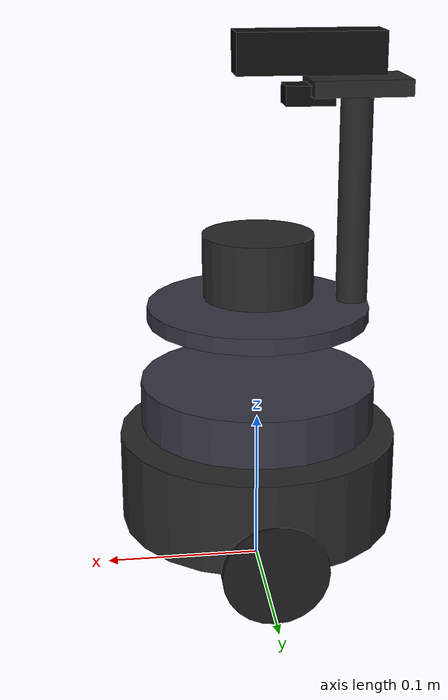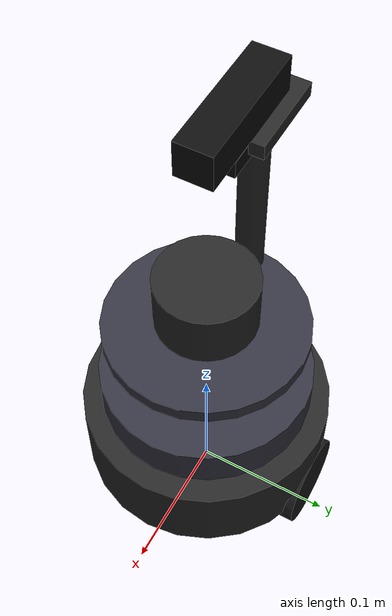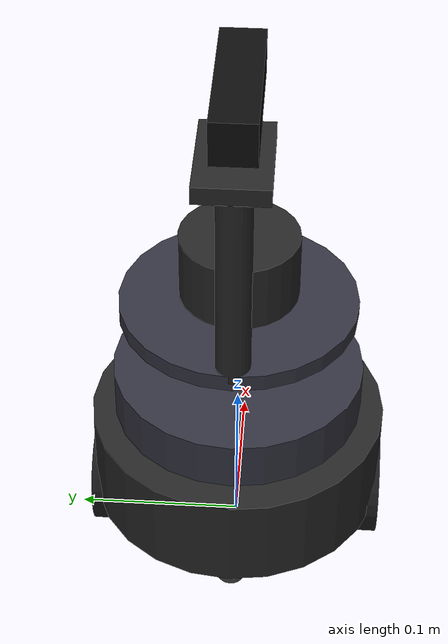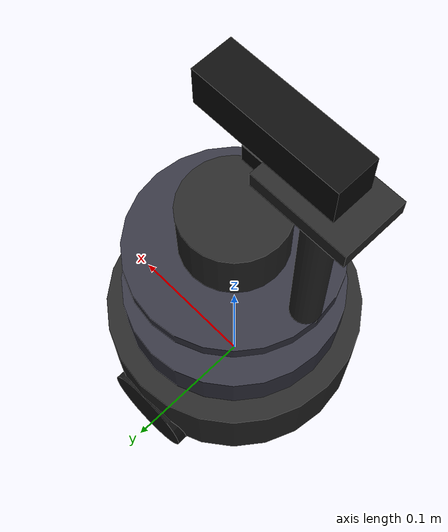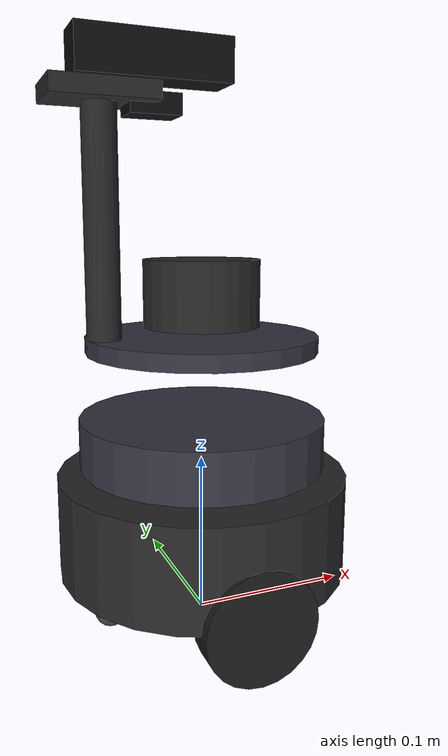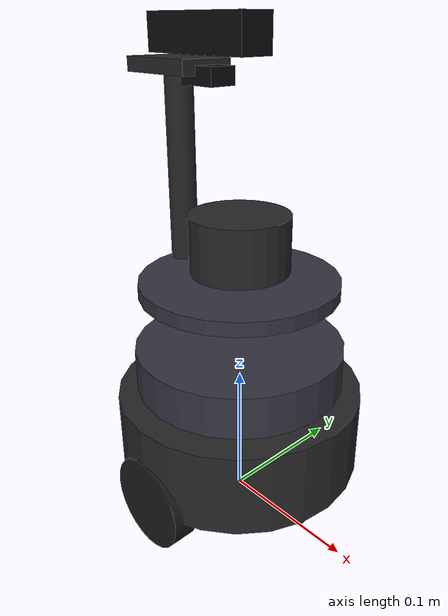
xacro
<?xml version="1.0"?>
<robot name="fire_bot" xmlns:xacro="http://www.ros.org/wiki/xacro">

  <xacro:include filename="$(find fire_description)/urdf/base.xacro"/>
  <xacro:include filename="$(find fire_description)/urdf/layers.xacro"/>
  <xacro:include filename="$(find fire_description)/urdf/sensors.xacro"/>
  <xacro:include filename="$(find fire_description)/urdf/gazebo.xacro"/>

</robot>

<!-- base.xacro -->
<!--
  fire_bot base: TurtleBot3 Burger 기본 치수(바퀴 반경 0.033m, 바퀴 간격 0.160m,
  몸체 약 0.138(h) x 0.178(d))를 따르는 1층(모터/OpenCR) 몸체 + 바퀴 + 캐스터.
  관성값은 상자/원통 매크로로 근사 계산한다(매직넘버 대신 매크로 인자로 관리).
-->
<robot xmlns:xacro="http://www.ros.org/wiki/xacro">

  <!-- ===== 공통 관성 매크로 ===== -->
  <xacro:macro name="cylinder_inertial" params="mass radius length *origin">
    <inertial>
      <xacro:insert_block name="origin"/>
      <mass value="${mass}"/>
      <inertia
        ixx="${mass*(3*radius*radius+length*length)/12}" ixy="0.0" ixz="0.0"
        iyy="${mass*(3*radius*radius+length*length)/12}" iyz="0.0"
        izz="${mass*radius*radius/2}"/>
    </inertial>
  </xacro:macro>

  <xacro:macro name="box_inertial" params="mass x y z *origin">
    <inertial>
      <xacro:insert_block name="origin"/>
      <mass value="${mass}"/>
      <inertia
        ixx="${mass*(y*y+z*z)/12}" ixy="0.0" ixz="0.0"
        iyy="${mass*(x*x+z*z)/12}" iyz="0.0"
        izz="${mass*(x*x+y*y)/12}"/>
    </inertial>
  </xacro:macro>

  <xacro:macro name="sphere_inertial" params="mass radius *origin">
    <inertial>
      <xacro:insert_block name="origin"/>
      <mass value="${mass}"/>
      <inertia
        ixx="${2*mass*radius*radius/5}" ixy="0.0" ixz="0.0"
        iyy="${2*mass*radius*radius/5}" iyz="0.0"
        izz="${2*mass*radius*radius/5}"/>
    </inertial>
  </xacro:macro>

  <!-- ===== 치수 상수 (매직넘버 금지 → xacro property) ===== -->
  <xacro:property name="wheel_radius" value="0.033"/>
  <xacro:property name="wheel_width" value="0.018"/>
  <xacro:property name="wheel_separation" value="0.160"/>
  <xacro:property name="base_radius" value="0.089"/>      <!-- 몸체 지름 0.178m -->
  <xacro:property name="base_height" value="0.060"/>       <!-- plate1: z 0.01~0.07 -->
  <xacro:property name="base_mass" value="0.90"/>          <!-- 모터/OpenCR 포함 1층 -->
  <xacro:property name="wheel_mass" value="0.028"/>
  <xacro:property name="caster_radius" value="0.010"/>
  <xacro:property name="caster_mass" value="0.02"/>

  <!-- base_footprint: 바닥 투영 기준 프레임 (z=0), EKF/Nav2 의 base_frame -->
  <link name="base_footprint"/>

  <joint name="base_joint" type="fixed">
    <parent link="base_footprint"/>
    <child link="base_link"/>
    <origin xyz="0 0 ${wheel_radius}" rpy="0 0 0"/>
  </joint>

  <!-- base_link = plate1 (모터/OpenCR 모터 드라이버 층, z ≈ 0.01~0.07 (base_footprint 기준으로는 wheel_radius 부터)) -->
  <link name="base_link">
    <visual>
      <origin xyz="0 0 ${base_height/2}" rpy="0 0 0"/>
      <geometry><cylinder radius="${base_radius}" length="${base_height}"/></geometry>
      <material name="fire_bot_dark"><color rgba="0.15 0.15 0.15 1.0"/></material>
    </visual>
    <collision>
      <origin xyz="0 0 ${base_height/2}" rpy="0 0 0"/>
      <geometry><cylinder radius="${base_radius}" length="${base_height}"/></geometry>
    </collision>
    <xacro:box_inertial mass="${base_mass}" x="${base_radius*2}" y="${base_radius*2}" z="${base_height}">
      <origin xyz="0 0 ${base_height/2}" rpy="0 0 0"/>
    </xacro:box_inertial>
  </link>

  <!-- ===== 바퀴 ===== -->
  <xacro:macro name="wheel" params="prefix reflect">
    <link name="wheel_${prefix}_link">
      <visual>
        <origin xyz="0 0 0" rpy="${pi/2} 0 0"/>
        <geometry><cylinder radius="${wheel_radius}" length="${wheel_width}"/></geometry>
        <material name="fire_bot_wheel"><color rgba="0.1 0.1 0.1 1.0"/></material>
      </visual>
      <collision>
        <origin xyz="0 0 0" rpy="${pi/2} 0 0"/>
        <geometry><cylinder radius="${wheel_radius}" length="${wheel_width}"/></geometry>
      </collision>
      <xacro:cylinder_inertial mass="${wheel_mass}" radius="${wheel_radius}" length="${wheel_width}">
        <origin xyz="0 0 0" rpy="${pi/2} 0 0"/>
      </xacro:cylinder_inertial>
    </link>
    <joint name="wheel_${prefix}_joint" type="continuous">
      <parent link="base_link"/>
      <child link="wheel_${prefix}_link"/>
      <origin xyz="0 ${reflect*wheel_separation/2} 0" rpy="0 0 0"/>
      <axis xyz="0 1 0"/>
      <dynamics damping="0.05" friction="0.05"/>
    </joint>
  </xacro:macro>

  <xacro:wheel prefix="left" reflect="1"/>
  <xacro:wheel prefix="right" reflect="-1"/>

  <!-- ===== 캐스터 (앞/뒤, 마찰 낮은 구) ===== -->
  <xacro:macro name="caster" params="prefix x">
    <link name="caster_${prefix}_link">
      <visual>
        <geometry><sphere radius="${caster_radius}"/></geometry>
        <material name="fire_bot_caster"><color rgba="0.3 0.3 0.3 1.0"/></material>
      </visual>
      <collision>
        <geometry><sphere radius="${caster_radius}"/></geometry>
      </collision>
      <xacro:sphere_inertial mass="${caster_mass}" radius="${caster_radius}">
        <origin xyz="0 0 0" rpy="0 0 0"/>
      </xacro:sphere_inertial>
    </link>
    <joint name="caster_${prefix}_joint" type="fixed">
      <parent link="base_link"/>
      <child link="caster_${prefix}_link"/>
      <origin xyz="${x} 0 ${-(wheel_radius-caster_radius)}" rpy="0 0 0"/>
    </joint>
    <gazebo reference="caster_${prefix}_link">
      <mu1>0.01</mu1>
      <mu2>0.01</mu2>
    </gazebo>
  </xacro:macro>

  <xacro:caster prefix="front" x="0.06"/>
  <xacro:caster prefix="back" x="-0.06"/>

</robot>

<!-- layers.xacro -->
<!--
  2층(Jetson Orin Nano + 배터리, 질량만 반영), 3층(LDS-02 마운트 플레이트),
  후방 기둥(mount_pillar_link, LiDAR 후방 시야를 가리는 구조물 — laser_filters 로 STEP3 에서 제거).
  base.xacro 의 cylinder/box 관성 매크로를 재사용한다.
-->
<robot xmlns:xacro="http://www.ros.org/wiki/xacro">

  <xacro:property name="plate2_z" value="0.080"/>
  <xacro:property name="plate2_radius" value="0.075"/>
  <xacro:property name="plate2_height" value="0.030"/>
  <xacro:property name="plate2_mass" value="0.45"/>   <!-- Jetson Orin Nano + 배터리 -->

  <xacro:property name="plate3_z" value="0.140"/>
  <xacro:property name="plate3_radius" value="0.070"/>
  <xacro:property name="plate3_height" value="0.010"/>
  <xacro:property name="plate3_mass" value="0.10"/>

  <xacro:property name="pillar_radius" value="0.010"/>   <!-- 직경 0.02m -->
  <xacro:property name="pillar_x" value="-0.060"/>        <!-- 후방(뒤쪽) -->
  <xacro:property name="pillar_bottom_z" value="0.140"/>  <!-- plate3 상단 -->
  <xacro:property name="pillar_top_z" value="0.280"/>     <!-- 최상단: 팬 조인트 -->
  <xacro:property name="pillar_length" value="${pillar_top_z - pillar_bottom_z}"/>
  <xacro:property name="pillar_mass" value="0.05"/>

  <xacro:property name="scan_z" value="0.170"/>
  <xacro:property name="scan_radius" value="0.035"/>
  <xacro:property name="scan_height" value="0.040"/>
  <xacro:property name="scan_mass" value="0.130"/>       <!-- LDS-02 실측 근사 -->

  <!-- ===== plate2: Jetson + 배터리 ===== -->
  <link name="plate2_link">
    <visual>
      <geometry><cylinder radius="${plate2_radius}" length="${plate2_height}"/></geometry>
      <material name="fire_bot_plate"><color rgba="0.2 0.2 0.25 1.0"/></material>
    </visual>
    <collision>
      <geometry><cylinder radius="${plate2_radius}" length="${plate2_height}"/></geometry>
    </collision>
    <xacro:cylinder_inertial mass="${plate2_mass}" radius="${plate2_radius}" length="${plate2_height}">
      <origin xyz="0 0 0" rpy="0 0 0"/>
    </xacro:cylinder_inertial>
  </link>
  <joint name="plate2_joint" type="fixed">
    <parent link="base_link"/>
    <child link="plate2_link"/>
    <origin xyz="0 0 ${plate2_z}" rpy="0 0 0"/>
  </joint>

  <!-- ===== plate3: LDS-02 마운트 플레이트 ===== -->
  <link name="plate3_link">
    <visual>
      <geometry><cylinder radius="${plate3_radius}" length="${plate3_height}"/></geometry>
      <material name="fire_bot_plate"/>
    </visual>
    <collision>
      <geometry><cylinder radius="${plate3_radius}" length="${plate3_height}"/></geometry>
    </collision>
    <xacro:cylinder_inertial mass="${plate3_mass}" radius="${plate3_radius}" length="${plate3_height}">
      <origin xyz="0 0 0" rpy="0 0 0"/>
    </xacro:cylinder_inertial>
  </link>
  <joint name="plate3_joint" type="fixed">
    <parent link="base_link"/>
    <child link="plate3_link"/>
    <origin xyz="0 0 ${plate3_z}" rpy="0 0 0"/>
  </joint>

  <!-- ===== base_scan: LDS-02 2D LiDAR ===== -->
  <link name="base_scan">
    <visual>
      <geometry><cylinder radius="${scan_radius}" length="${scan_height}"/></geometry>
      <material name="fire_bot_dark"/>
    </visual>
    <collision>
      <geometry><cylinder radius="${scan_radius}" length="${scan_height}"/></geometry>
    </collision>
    <xacro:cylinder_inertial mass="${scan_mass}" radius="${scan_radius}" length="${scan_height}">
      <origin xyz="0 0 0" rpy="0 0 0"/>
    </xacro:cylinder_inertial>
  </link>
  <joint name="base_scan_joint" type="fixed">
    <parent link="base_link"/>
    <child link="base_scan"/>
    <origin xyz="0 0 ${scan_z}" rpy="0 0 0"/>
  </joint>

  <!-- ===== mount_pillar_link: 후방 기둥(LiDAR 시야 일부를 가림 → STEP3 laser_filters 대상) ===== -->
  <link name="mount_pillar_link">
    <visual>
      <geometry><cylinder radius="${pillar_radius}" length="${pillar_length}"/></geometry>
      <material name="fire_bot_dark"/>
    </visual>
    <collision>
      <geometry><cylinder radius="${pillar_radius}" length="${pillar_length}"/></geometry>
    </collision>
    <xacro:cylinder_inertial mass="${pillar_mass}" radius="${pillar_radius}" length="${pillar_length}">
      <origin xyz="0 0 0" rpy="0 0 0"/>
    </xacro:cylinder_inertial>
  </link>
  <joint name="mount_pillar_joint" type="fixed">
    <parent link="base_link"/>
    <child link="mount_pillar_link"/>
    <origin xyz="${pillar_x} 0 ${pillar_bottom_z + pillar_length/2}" rpy="0 0 0"/>
  </joint>

</robot>

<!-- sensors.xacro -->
<!--
  센서 마운트 물리 구조: 베이스 IMU, camera_pan_joint(회전 마운트) + D435i + MLX90640.
  실제 Gazebo 센서/플러그인 정의는 gazebo.xacro 에 분리한다(REP-103 optical frame 규약 준수:
  카메라/열화상 optical frame 은 z 전방, x 우측, y 하방).
-->
<robot xmlns:xacro="http://www.ros.org/wiki/xacro">

  <!-- ===== 베이스(OpenCR) IMU — EKF 입력 ===== -->
  <xacro:property name="imu_z" value="0.030"/>
  <link name="imu_link">
    <visual>
      <geometry><box size="0.02 0.02 0.01"/></geometry>
      <material name="fire_bot_dark"/>
    </visual>
  </link>
  <joint name="imu_joint" type="fixed">
    <parent link="base_link"/>
    <child link="imu_link"/>
    <origin xyz="0 0 ${imu_z}" rpy="0 0 0"/>
  </joint>

  <!-- ===== camera_pan_joint: 회전 마운트 (mount_pillar_link 최상단, ±π) ===== -->
  <xacro:property name="pan_plate_size" value="0.06 0.04 0.01"/>
  <xacro:property name="pan_effort" value="2.0"/>
  <xacro:property name="pan_velocity" value="3.0"/>

  <link name="camera_pan_link">
    <visual>
      <geometry><box size="${pan_plate_size}"/></geometry>
      <material name="fire_bot_dark"/>
    </visual>
    <collision>
      <geometry><box size="${pan_plate_size}"/></geometry>
    </collision>
    <xacro:box_inertial mass="0.05" x="0.06" y="0.04" z="0.01">
      <origin xyz="0 0 0" rpy="0 0 0"/>
    </xacro:box_inertial>
  </link>

  <joint name="camera_pan_joint" type="revolute">
    <parent link="mount_pillar_link"/>
    <child link="camera_pan_link"/>
    <origin xyz="0 0 ${pillar_length/2}" rpy="0 0 0"/>
    <axis xyz="0 0 1"/>
    <limit lower="${-pi}" upper="${pi}" effort="${pan_effort}" velocity="${pan_velocity}"/>
    <dynamics damping="0.05" friction="0.02"/>
  </joint>

  <!-- ===== D435i (camera_link, z ≈ 0.30) ===== -->
  <xacro:property name="camera_size" value="0.090 0.025 0.025"/>
  <link name="camera_link">
    <visual>
      <geometry><box size="${camera_size}"/></geometry>
      <material name="fire_bot_camera"><color rgba="0.05 0.05 0.05 1.0"/></material>
    </visual>
    <collision>
      <geometry><box size="${camera_size}"/></geometry>
    </collision>
    <xacro:box_inertial mass="0.072" x="0.090" y="0.025" z="0.025">
      <origin xyz="0 0 0" rpy="0 0 0"/>
    </xacro:box_inertial>
  </link>
  <joint name="camera_joint" type="fixed">
    <parent link="camera_pan_link"/>
    <child link="camera_link"/>
    <origin xyz="0.03 0 0.02" rpy="0 0 0"/>
  </joint>

  <!-- optical frame: z 전방, x 우측, y 하방 (REP-103) -->
  <link name="camera_color_optical_frame"/>
  <joint name="camera_color_optical_joint" type="fixed">
    <parent link="camera_link"/>
    <child link="camera_color_optical_frame"/>
    <origin xyz="0 0 0" rpy="${-pi/2} 0 ${-pi/2}"/>
  </joint>

  <link name="camera_depth_optical_frame"/>
  <joint name="camera_depth_optical_joint" type="fixed">
    <parent link="camera_link"/>
    <child link="camera_depth_optical_frame"/>
    <origin xyz="0 0 0" rpy="${-pi/2} 0 ${-pi/2}"/>
  </joint>

  <link name="camera_imu_frame"/>
  <joint name="camera_imu_joint" type="fixed">
    <parent link="camera_link"/>
    <child link="camera_imu_frame"/>
    <origin xyz="-0.01 0 -0.008" rpy="0 0 0"/>
  </joint>

  <!-- ===== MLX90640 (thermal_link, 카메라 바로 아래) ===== -->
  <xacro:property name="thermal_size" value="0.030 0.020 0.012"/>
  <link name="thermal_link">
    <visual>
      <geometry><box size="${thermal_size}"/></geometry>
      <material name="fire_bot_camera"/>
    </visual>
    <collision>
      <geometry><box size="${thermal_size}"/></geometry>
    </collision>
    <xacro:box_inertial mass="0.010" x="0.030" y="0.020" z="0.012">
      <origin xyz="0 0 0" rpy="0 0 0"/>
    </xacro:box_inertial>
  </link>
  <joint name="thermal_joint" type="fixed">
    <parent link="camera_pan_link"/>
    <child link="thermal_link"/>
    <origin xyz="0.03 0 -0.005" rpy="0 0 0"/>
  </joint>

  <link name="thermal_optical_frame"/>
  <joint name="thermal_optical_joint" type="fixed">
    <parent link="thermal_link"/>
    <child link="thermal_optical_frame"/>
    <origin xyz="0 0 0" rpy="${-pi/2} 0 ${-pi/2}"/>
  </joint>

</robot>
